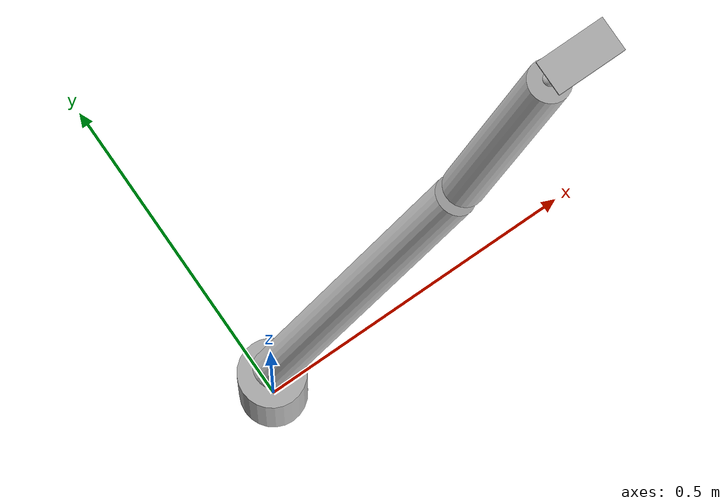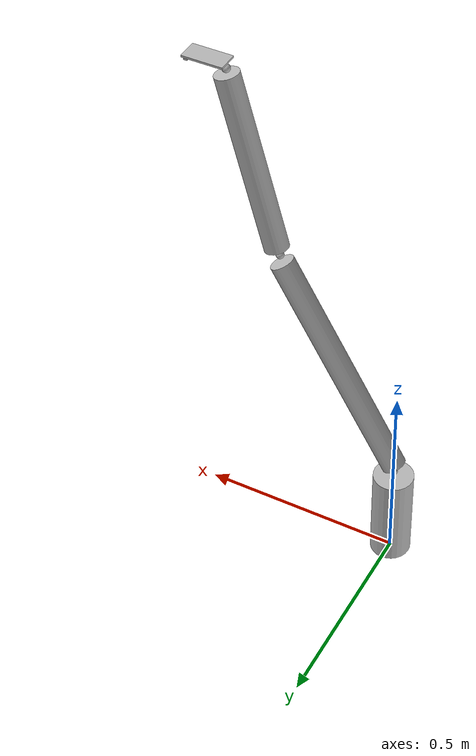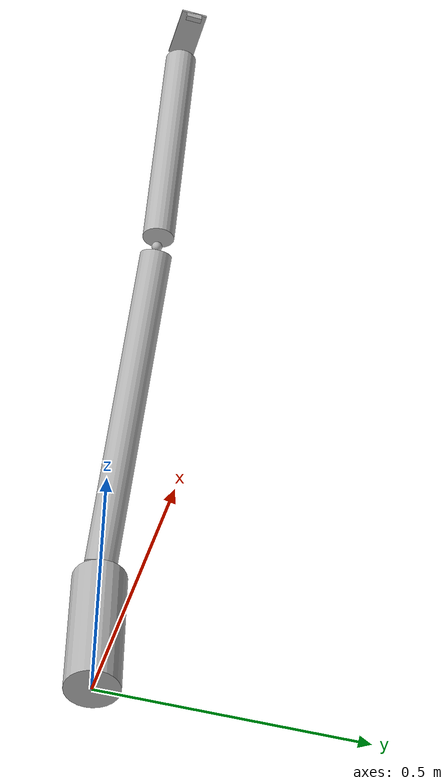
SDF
<?xml version="1.0" ?>
<sdf version="1.5">
  <model name="tree_model">
	<pose>0 0 0.125 0 0 0</pose>
	<self_collide>true</self_collide>
	<link name = "stationary">
		<inertial>
		<mass>1000</mass>
        	<inertia>
          	<ixx>10</ixx>
          	<ixy>10</ixy>
          	<ixz>10</ixz>
          	<iyy>10</iyy>
          	<iyz>10</iyz>
          	<izz>10</izz>
        	</inertia>
      	</inertial>
	<visual name="stationary_visual">
		<geometry>
		<cylinder>
		<radius>0.05</radius>
		<length>0.25</length>
		</cylinder>
		</geometry>
	</visual>
        <collision name="stationary_collision">
                <geometry>
                <cylinder>
                <radius>0.05</radius>
                <length>0.25</length>
                </cylinder>
		</geometry>
        </collision>
	</link>

       <link name = "branch1joint">
                <pose> 0 0 0.14 0 0 0 </pose>
                <inertial>
                <mass>0.0001</mass>
                <inertia>
                <ixx>0.0000030225</ixx>
                <ixy>0</ixy>
                <ixz>0</ixz>
                <iyy>0.0000030225</iyy>
                <iyz>0</iyz>
                <izz>0.0000030225</izz>
                </inertia>
        </inertial>
        <visual name="branch1joint_visual">
                <geometry>
                <sphere>
                <radius>0.01</radius>
                </sphere>
                </geometry>
        </visual>
        <collision name="branch1joint_collision">
                <geometry>
                <sphere>
                <radius>0.01</radius>
                </sphere>
                </geometry>
        </collision>
        </link>

       <link name = "branch1">
		<pose> 0.15 0 0.42 0 0.5236 0 </pose>
                <inertial>
                <mass>0.1</mass>
                <inertia>
                <ixx>0.0030225</ixx>
                <ixy>0</ixy>
                <ixz>0</ixz>
                <iyy>0.0030225</iyy>
                <iyz>0</iyz>
                <izz>0.000045</izz>
                </inertia>
        </inertial>
        <visual name="branch1_visual">
                <geometry>
                <cylinder>
                <radius>0.03</radius>
                <length>0.6</length>
                </cylinder>
                </geometry>
        </visual>
        <collision name="branch1_collision">
                <geometry>
                <cylinder>
                <radius>0.03</radius>
                <length>0.6</length>
                </cylinder>
                </geometry>
        </collision>
        </link>

       <link name = "branch2joint">
                <pose> 0.305 0 0.70 0 0 0 </pose>
                <inertial>
                <mass>0.0001</mass>
                <inertia>
                <ixx>0.0000030225</ixx>
                <ixy>0</ixy>
                <ixz>0</ixz>
                <iyy>0.0000030225</iyy>
                <iyz>0</iyz>
                <izz>0.0000030225</izz>
                </inertia>
        </inertial>
        <visual name="branch2joint_visual">
                <geometry>
                <sphere>
                <radius>0.01</radius>
                </sphere>
                </geometry>
        </visual>
        <collision name="branch2joint_collision">
                <geometry>
                <sphere>
                <radius>0.01</radius>
                </sphere>
                </geometry>
        </collision>
        </link>

       <link name = "branch2">
                <pose> 0.371 0 0.935 0 0.2618 0 </pose>
                <inertial>
                <mass>0.07</mass>
                <inertia>
                <ixx>0.00171</ixx>
                <ixy>0</ixy>
                <ixz>0</ixz>
                <iyy>0.00171</iyy>
                <iyz>0</iyz>
                <izz>0.000045</izz>
                </inertia>
        </inertial>
        <visual name="branch2_visual">
                <geometry>
                <cylinder>
                <radius>0.03</radius>
                <length>0.45</length>
                </cylinder>
                </geometry>
        </visual>
        <collision name="branch2_collision">
                <geometry>
                <cylinder>
                <radius>0.03</radius>
                <length>0.6</length>
                </cylinder>
                </geometry>
        </collision>
        </link>

       <link name = "leaf1joint">
                <pose> 0.43 0 1.165 0 0 0 </pose>
                <inertial>
                <mass>0.0001</mass>
                <inertia>
                <ixx>0.0000030225</ixx>
                <ixy>0</ixy>
                <ixz>0</ixz>
                <iyy>0.0000030225</iyy>
                <iyz>0</iyz>
                <izz>0.0000030225</izz>
                </inertia>
        </inertial>
        <visual name="leaf1joint_visual">
                <geometry>
                <sphere>
                <radius>0.01</radius>
                </sphere>
                </geometry>
        </visual>
        <collision name="leaf1joint_collision">
                <geometry>
                <sphere>
                <radius>0.01</radius>
                </sphere>
                </geometry>
        </collision>
        </link>

        <link name = "leaf1">
                <pose> 0.475 0 1.18 0 0 0 </pose>
                <inertial>
                <mass>0.01</mass>
                <inertia>
                <ixx>0.00000171</ixx>
                <ixy>0</ixy>
                <ixz>0</ixz>
                <iyy>0.00000171</iyy>
                <iyz>0</iyz>
                <izz>0.00000045</izz>
                </inertia>
        </inertial>
        <visual name="leaf1_visual">
                <geometry>
                <box>
                <size>0.1 0.05 0.005</size>
                </box>
                </geometry>
        </visual>
        <collision name="leaf1_collision">
                <geometry>
                <box>
                <size>0.1 0.05 0.005</size>
                </box>
                </geometry>
         </collision>
        <visual name = "leaf1_visual2">
                <pose>0.045 0 -0.0076 0 0 0 </pose>
                <geometry>
                <box>
                <size>0.01 0.03 0.015</size>
                </box>
                </geometry>
        </visual>
        <collision name = "leaf1_collision2">
                <pose>0.045 0 0 -0.0076 0 0 </pose>
                <geometry>
                <box>
                <size>0.01 0.03 0.015</size>
                </box>
                </geometry>
        </collision>
        </link>

	<joint name="branch1_joint" type="revolute">
	<parent>branch1joint</parent>
	<child>stationary</child>
	<axis>
                <xyz>0 1 0</xyz>
                <dynamics>
                <damping>0.15</damping>
                <spring_reference>0</spring_reference>
                <spring_stiffness>2.7</spring_stiffness>
                </dynamics>
	</axis>
	<pose>0 0 0.125 0 0 0</pose>
	</joint>

        <joint name="branch1_joint2" type="revolute">
        <parent>branch1</parent>
        <child>branch1joint</child>
        <axis>
                <xyz>1 0 0</xyz>
                <dynamics>
                <damping>0.2</damping>
                <spring_reference>0</spring_reference>
                <spring_stiffness>3.4</spring_stiffness>
                </dynamics>
        </axis>
        <pose>0 0 0 0 0 0</pose>
        </joint>

	<joint name="branch2_joint" type="revolute">
        <parent>branch2joint</parent>
        <child>branch1</child>
        <axis>
                <xyz>1 0 0</xyz>
                <dynamics>
                <damping>0.01</damping>
                <spring_reference>0</spring_reference>
                <spring_stiffness>1.9</spring_stiffness>
                </dynamics>
        </axis>
        <pose>0 0 0 0 0 0</pose>
        </joint>

        <joint name="branch2_joint2" type="revolute">
        <parent>branch2joint</parent>
        <child>branch2</child>
        <axis>
                <xyz>0 1 0</xyz>
                <dynamics>
                <damping>0.2</damping>
                <spring_reference>0</spring_reference>
                <spring_stiffness>3.15</spring_stiffness>
                </dynamics>
        </axis>
        <pose>-0.05 0 0 0 0 0</pose>
        </joint>

        <joint name="leaf1_joint" type="revolute">
        <parent>leaf1joint</parent>
        <child>branch2</child>
        <axis>
                <xyz>0 1 0</xyz>
                <dynamics>
                <damping>0.12</damping>
                <spring_reference>0</spring_reference>
                <spring_stiffness>1.85</spring_stiffness>
                </dynamics>
        </axis>
        <pose>-0.05 0 -0.008 0 0 0</pose>
        </joint>

        <joint name="leaf1_joint2" type="revolute">
        <parent>leaf1joint</parent>
        <child>leaf1</child>
        <axis>
                <xyz>0 1 0</xyz>
                <dynamics>
                <damping>0.01</damping>
                <spring_reference>0</spring_reference>
                <spring_stiffness>2.35</spring_stiffness>
                </dynamics>
        </axis>
        <pose>-0.05 0 -0.008 0 0 0</pose>
        </joint>

  </model>
</sdf>
